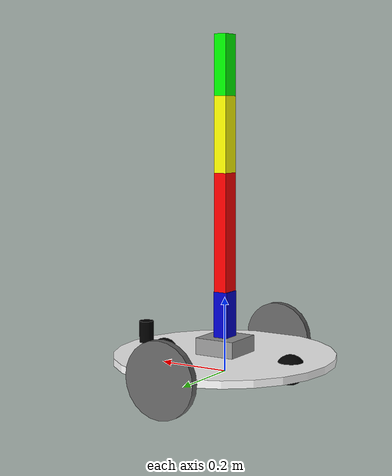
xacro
<?xml version="1.0"?>
<robot xmlns:xacro="http://www.ros.org/wiki/xacro" name="ur10">
    <xacro:include filename="arm.urdf" />
    <xacro:include filename="car.urdf" />
    <joint name="arm_to_car" type="fixed">
        <parent link="base_link" />
        <child link="link_0" />
    </joint>
    <xacro:include filename="additional-info.xacro.urdf" />
</robot>

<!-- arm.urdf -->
<robot name="arm" xmlns:xacro="http://ros.org/wiki/xacro">
    <material name="omni/Blue">
        <color rgba="0 0 0.8 1" />
    </material>
    <material name="omni/Red">
        <color rgba="1 0 0 1" />
    </material>
    <material name="omni/Green">
        <color rgba="0 1 0 1" />
    </material>
    <material name="omni/Yellow">
        <color rgba="1 1 0 1" />
    </material>
    <material name="omni/LightGrey">
        <color rgba="0.6 0.6 0.6 1" />
    </material>
    <material name="omni/DarkGrey">
        <color rgba="0.4 0.4 0.4 1" />
    </material>
    <link name="link_0">
        <visual>
            <origin rpy="0 0 0" xyz="0 0 0.02725" />
            <geometry>
                <box size="0.1143 0.1143 0.0545" />
            </geometry>
            <material name="omni/LightGrey" />
        </visual>
        <collision>
            <origin rpy="0 0 0" xyz="0 0 0.02725" />
            <geometry>
                <box size="0.1143 0.1143 0.0545" />
            </geometry>
        </collision>
        <inertial>
            <origin rpy="0 0 0" xyz="0 0 0.02725" />
            <mass value="0.2" />
            <inertia ixx="0.000267245666667" ixy="0" ixz="0" iyy="0.000267245666667" iyz="0"
                izz="0.000435483" />
        </inertial>
    </link>
    <joint name="joint_1" type="revolute">
        <parent link="link_0" />
        <child link="link_1" />
        <dynamics damping="3.0" friction="0.3" />
        <limit effort="30.0" lower="-3.1415926535" upper="3.1415926535" velocity="5.0" />
        <origin rpy="0 0 0" xyz="0 0 0.0545" />
        <axis xyz="0 0 1" />
    </joint>
    <link name="link_1">
        <visual>
            <origin rpy="0 0 0" xyz="0 0 0.0615" />
            <geometry>
                <box size="0.0402 0.05 0.123" />
            </geometry>
            <material name="omni/Blue" />
        </visual>
        <collision>
            <origin rpy="0 0 0" xyz="0 0 0.0615" />
            <geometry>
                <box size="0.0402 0.05 0.123" />
            </geometry>
        </collision>
        <inertial>
            <origin rpy="0 0 0" xyz="0 0 0.0615" />
            <mass value="0.190421352" />
            <inertia ixx="0.000279744834534" ixy="0" ixz="0" iyy="0.000265717763008" iyz="0"
                izz="6.53151584738e-05" />
        </inertial>
    </link>
    <joint name="joint_2" type="revolute">
        <parent link="link_1" />
        <child link="link_2" />
        <dynamics damping="3.0" friction="0.3" />
        <limit effort="30.0" lower="-1.57079632679" upper="1.57079632679" velocity="5.0" />
        <origin rpy="0 0 0" xyz="0 0 0.123" />
        <axis xyz="0 1 0" />
    </joint>
    <link name="link_2">
        <visual>
            <origin rpy="0 0 0" xyz="0 0 0.1585" />
            <geometry>
                <box size="0.0356 0.05 0.317" />
            </geometry>
            <material name="omni/Red" />
        </visual>
        <collision>
            <origin rpy="0 0 0" xyz="0 0 0.1585" />
            <geometry>
                <box size="0.0356 0.05 0.317" />
            </geometry>
        </collision>
        <inertial>
            <origin rpy="0 0 0" xyz="0 0 0.1585" />
            <mass value="0.29302326" />
            <inertia ixx="0.00251484771035" ixy="0" ixz="0" iyy="0.00248474836108" iyz="0"
                izz="9.19936757328e-05" />
        </inertial>
    </link>
    <joint name="joint_3" type="revolute">
        <parent link="link_2" />
        <child link="link_3" />
        <dynamics damping="3.0" friction="0.3" />
        <limit effort="30.0" lower="-1.57079632679" upper="1.57079632679" velocity="5.0" />
        <origin rpy="0 0 0" xyz="0 0 0.317" />
        <axis xyz="0 1 0" />
    </joint>
    <link name="link_3">
        <visual>
            <origin rpy="0 0 0" xyz="0 0 0.101" />
            <geometry>
                <box size="0.0356 0.05 0.202" />
            </geometry>
            <material name="omni/Yellow" />
        </visual>
        <collision>
            <origin rpy="0 0 0" xyz="0 0 0.101" />
            <geometry>
                <box size="0.0356 0.05 0.202" />
            </geometry>
        </collision>
        <inertial>
            <origin rpy="0 0 0" xyz="0 0 0.101" />
            <mass value="0.21931466" />
            <inertia ixx="0.000791433503053" ixy="0" ixz="0" iyy="0.000768905501178" iyz="0"
                izz="6.88531064581e-05" />
        </inertial>
    </link>
    <joint name="joint_4" type="revolute">
        <parent link="link_3" />
        <child link="link_4" />
        <dynamics damping="3.0" friction="0.3" />
        <limit effort="30.0" lower="-1.57079632679" upper="1.57079632679" velocity="5.0" />
        <origin rpy="0 0 0" xyz="0 0 0.202" />
        <axis xyz="0 1 0" />
    </joint>
    <link name="link_4">
        <visual>
            <origin rpy="0 0 0" xyz="0 0 0.08025" />
            <geometry>
                <box size="0.0356 0.05 0.1605" />
            </geometry>
            <material name="omni/Green" />
        </visual>
        <collision>
            <origin rpy="0 0 0" xyz="0 0 0.08025" />
            <geometry>
                <box size="0.0356 0.05 0.1605" />
            </geometry>
        </collision>
        <inertial>
            <origin rpy="0 0 0" xyz="0 0 0.08025" />
            <mass value="0.15813986" />
            <inertia ixx="0.00037242266488" ixy="0" ixz="0" iyy="0.000356178538461" iyz="0"
                izz="4.96474819141e-05" />
        </inertial>
    </link>
    <joint name="joint_5" type="fixed">
        <parent link="link_4" />
        <child link="link_5" />
        <origin rpy="0 0 0" xyz="0 0 0.1605" />
    </joint>
    <link name="link_5">
        <inertial>
            <origin rpy="0 0 0" xyz="0 0 0" />
            <mass value="1e-12" />
            <inertia ixx="1e-12" ixy="0" ixz="0" iyy="1e-12" iyz="0" izz="1e-12" />
        </inertial>
    </link>
</robot>

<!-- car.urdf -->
<robot xmlns:xacro="http://www.ros.org/wiki/xacro" name="grapper">
    <material name="Black">
        <color rgba="0.0 0.0 0.0 1.0" />
    </material>
    <material name="White">
        <color rgba="1.0 1.0 1.0 1.0" />
    </material>
    <material name="Blue">
        <color rgba="0 0 0.8 1" />
    </material>
    <material name="Red">
        <color rgba="1 0 0 1" />
    </material>
    <material name="Green">
        <color rgba="0 1 0 1" />
    </material>
    <material name="Yellow">
        <color rgba="1 1 0 1" />
    </material>
    <material name="LightGrey">
        <color rgba="0.6 0.6 0.6 1" />
    </material>
    <material name="DarkGray">
        <color rgba="0.4 0.4 0.4 1" />
    </material>

    <link name="base_footprint">
        <inertial>
            <mass value="0.0001" />
            <origin xyz="0 0 0" />
            <inertia ixx="0.0001" ixy="0.0" ixz="0.0" iyy="0.0001" iyz="0.0" izz="0.0001" />
        </inertial>
        <visual>
            <origin rpy="0 0 0" xyz="0 0 0" />
            <geometry>
                <box size="0.001 0.001 0.001" />
            </geometry>
        </visual>
    </link>
    <gazebo reference="base_footprint">
        <turnGravityOff>false</turnGravityOff>
    </gazebo>
    <joint name="base_footprint_joint" type="fixed">
        <origin rpy="0 0 0" xyz="0 0 0.04" />
        <parent link="base_footprint" />
        <child link="base_link" />
    </joint>

    <link name="base_link">
        <inertial>
            <mass value="10" />
            <origin xyz="0 0 0" />
            <!--The
            3x3 rotational inertia matrix. -->
            <inertia ixx="0.0282916666667" ixy="0" ixz="0" iyy="0.0282916666667" iyz="0"
                izz="0.05625" />
        </inertial>
        <visual>
            <origin rpy="0 0 0" xyz="0 0 0" />
            <geometry>
                <cylinder length="0.02" radius="0.3" />
            </geometry>
            <material name="White" />
        </visual>
        <collision>
            <origin rpy="0 0 0 " xyz="0 0 0" />
            <geometry>
                <cylinder length="0.02" radius="0.3" />
            </geometry>
        </collision>
    </link>

    <gazebo reference="base_link">
        <material>Gazebo/White</material>
        <turnGravityOff>false</turnGravityOff>
    </gazebo>

    <!-- Adding Lidar -->

    <link name="lidar_link">
        <inertial>
            <mass value="0.5" />
            <origin xyz="0.13 0 0" />
            <inertia ixx="0.001" ixy="0.0" ixz="0.0" iyy="0.001" iyz="0.0" izz="0.001" />
        </inertial>
        <visual>
            <origin xyz="0.13 0 0" />
            <geometry>
                <cylinder length="0.14" radius="0.02" />
            </geometry>
            <material name="Black" />
        </visual>
        <collision>
            <origin xyz="0.13 0 0" />
            <geometry>
                <cylinder length="0.14" radius="0.02" />
            </geometry>
        </collision>
    </link>
    <joint name="lidar_joint" type="fixed">
        <origin rpy="0 0 0" xyz="0.13 0 0" />
        <parent link="base_link" />
        <child link="lidar_link" />
    </joint>
    <gazebo reference="lidar_link">
        <sensor name=' gpu_lidar' type='gpu_lidar'>
            <pose relative_to=' lidar_frame'>0.05 0 0.15 0 0 0</pose>
            <topic>
                lidar</topic>
            <update_rate>10</update_rate>
            <ray>
                <scan>
                    <horizontal>
                        <samples>640</samples>
                        <resolution>1</resolution>
                        <min_angle>-1.57</min_angle>
                        <max_angle>1.57</max_angle>
                    </horizontal>
                    <vertical>
                        <samples>1</samples>
                        <resolution>1</resolution>
                        <min_angle>0</min_angle>
                        <max_angle>0</max_angle>
                    </vertical>
                </scan>
                <range>
                    <min>0.08</min>
                    <max>10.0</max>
                    <resolution>0.01</resolution>
                </range>
            </ray>
            <always_on>
                1</always_on>
            <visualize>true</visualize>
        </sensor>
    </gazebo>

    <!--fb
    : front, back ; lr: left, right -->
    <link name="front_right_wheel">
        <visual>
            <origin rpy="1.57079632679 0  0 " xyz="0 0 0" />
            <geometry>
                <cylinder length="0.02" radius="0.1" />
            </geometry>
            <material name="DarkGray" />
        </visual>
        <collision>
            <origin rpy="1.57079632679 0 0 " xyz="0 0 0" />
            <geometry>
                <cylinder length="0.02" radius="0.1" />
            </geometry>
        </collision>
        <inertial>
            <mass value="2.5" />
            <origin xyz="0 0 0" />
            <inertia ixx="0.00108333333333" ixy="0" ixz="0" iyy="0.00108333333333" iyz="0"
                izz="0.002" />
        </inertial>
    </link>
    <gazebo reference="front_right_wheel">
        <mu1 value="1.0" />
        <mu2 value="1.0" />
        <kp value="10000000.0" />
        <kd value="1.0" />
        <fdir1 value="1 0 0" />
        <material>Gazebo/Grey</material>
        <turnGravityOff>false</turnGravityOff>
    </gazebo>
    <joint name="front_right_wheel_joint" type="continuous">
        <parent link="base_link" />
        <child link="front_right_wheel" />
        <origin rpy="0 0 0" xyz="0.0 0.3 0.0" />
        <axis rpy="0  0" xyz="0 1 0" />
        <limit effort="100" velocity="100" />
        <joint_properties damping="0.0" friction="0.0" />
    </joint>
    <!-- Transmission is important to link the joints and the controller -->
    <transmission name="front_right_wheel_joint_trans">
        <type>transmission_interface/SimpleTransmission</type>
        <joint name="front_right_wheel_joint" />
        <actuator name="front_right_wheel_joint_motor">
            <hardwareInterface>EffortJointInterface</hardwareInterface>
            <mechanicalReduction>1</mechanicalReduction>
        </actuator>
    </transmission>
    <!--fb
    : front, back ; lr: left, right -->
    <link name="front_left_wheel">
        <visual>
            <origin rpy="1.57079632679 0  0 " xyz="0 0 0" />
            <geometry>
                <cylinder length="0.02" radius="0.1" />
            </geometry>
            <material name="DarkGray" />
        </visual>
        <collision>
            <origin rpy="1.57079632679 0 0 " xyz="0 0 0" />
            <geometry>
                <cylinder length="0.02" radius="0.1" />
            </geometry>
        </collision>
        <inertial>
            <mass value="2.5" />
            <origin xyz="0 0 0" />
            <inertia ixx="0.00108333333333" ixy="0" ixz="0" iyy="0.00108333333333" iyz="0"
                izz="0.002" />
        </inertial>
    </link>
    <gazebo reference="front_left_wheel">
        <mu1 value="1.0" />
        <mu2 value="1.0" />
        <kp value="10000000.0" />
        <kd value="1.0" />
        <fdir1 value="1 0 0" />
        <material>Gazebo/Grey</material>
        <turnGravityOff>false</turnGravityOff>
    </gazebo>
    <joint name="front_left_wheel_joint" type="continuous">
        <parent link="base_link" />
        <child link="front_left_wheel" />
        <origin rpy="0 0 0" xyz="0.0 -0.3 0.0" />
        <axis rpy="0  0" xyz="0 1 0" />
        <limit effort="100" velocity="100" />
        <joint_properties damping="0.0" friction="0.0" />
    </joint>
    <!-- Transmission is important to link the joints and the controller -->
    <transmission name="front_left_wheel_joint_trans">
        <type>transmission_interface/SimpleTransmission</type>
        <joint name="front_left_wheel_joint" />
        <actuator name="front_left_wheel_joint_motor">
            <hardwareInterface>EffortJointInterface</hardwareInterface>
            <mechanicalReduction>1</mechanicalReduction>
        </actuator>
    </transmission>
    <!--Caster
    front  -->
    <link name="caster_front_link">
        <visual>
            <origin rpy="1.57079632679 0 0" xyz="0 0.02 0" />
            <geometry>
                <sphere radius="0.04" />
            </geometry>
            <material name="Black" />
        </visual>
        <collision>
            <geometry>
                <sphere radius="0.04" />
            </geometry>
            <origin rpy="1.57079632679 0 0" xyz="0 0.02 0" />
        </collision>
        <inertial>
            <mass value="0.5" />
            <origin xyz="0 0 0" />
            <inertia ixx="0.001" ixy="0.0" ixz="0.0" iyy="0.001" iyz="0.0" izz="0.001" />
        </inertial>
    </link>
    <joint name="caster_front_joint" type="fixed">
        <parent link="base_link" />
        <child link="caster_front_link" />
        <origin rpy="-1.57079632679 0 0" xyz="0.2 0.0 0.007" />
    </joint>
    <gazebo reference="caster_front_link">
        <turnGravityOff>false</turnGravityOff>
    </gazebo>
    <link name="caster_back_link">
        <visual>
            <origin rpy="1.57079632679 0 0" xyz="0 0.02 0 " />
            <geometry>
                <sphere radius="0.04" />
            </geometry>
            <material name="Black" />
        </visual>
        <collision>
            <geometry>
                <sphere radius="0.04" />
            </geometry>
            <origin rpy="1.57079632679 0 0" xyz="0 0.02 0 " />
        </collision>
        <inertial>
            <mass value="0.5" />
            <origin xyz="0 0 0" />
            <inertia ixx="0.001" ixy="0.0" ixz="0.0" iyy="0.001" iyz="0.0" izz="0.001" />
        </inertial>
    </link>
    <joint name="caster_back_joint" type="fixed">
        <parent link="base_link" />
        <child link="caster_back_link" />
        <origin rpy="-1.57079632679 0 0" xyz="-0.2 0.0 0.009" />
    </joint>
    <gazebo reference="caster_back_link">
        <turnGravityOff>false</turnGravityOff>
    </gazebo>
    <gazebo>
        <plugin
            filename="libignition-gazebo-diff-drive-system.so"
            name="ignition::gazebo::systems::DiffDrive">
            <left_joint> front_left_wheel_joint</left_joint>
            <right_joint> front_right_wheel_joint</right_joint>
            <wheel_separation>0.3</wheel_separation>
            <wheel_radius>0.04</wheel_radius>
            <odom_publish_frequency>1</odom_publish_frequency>
            <topic>cmd_vel</topic>
        </plugin>
    </gazebo>
</robot>
